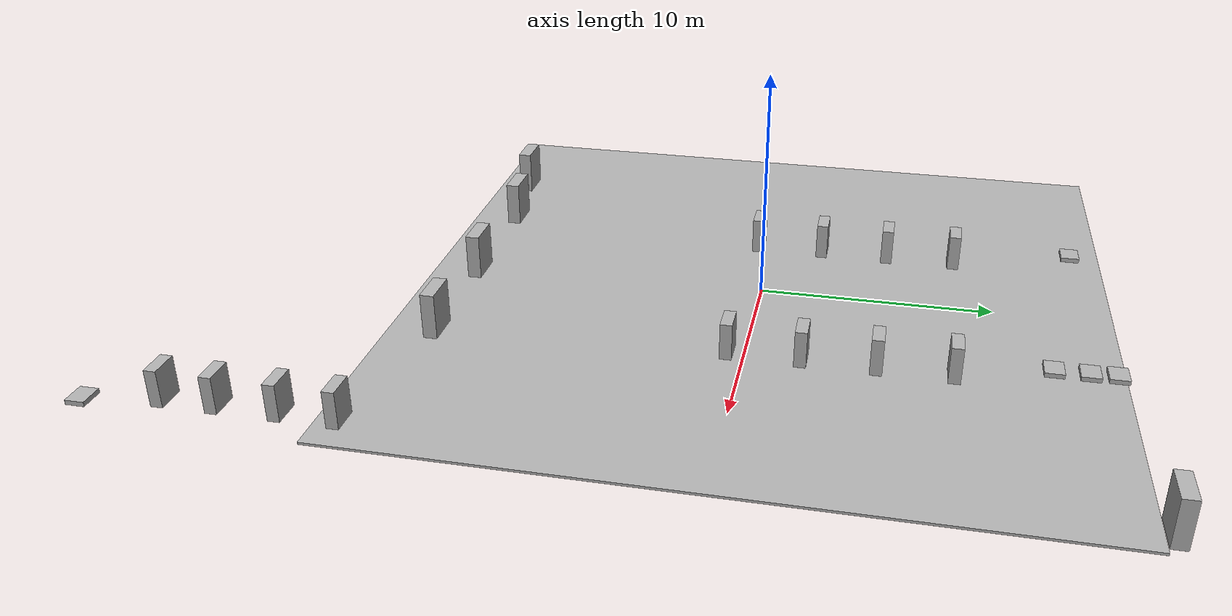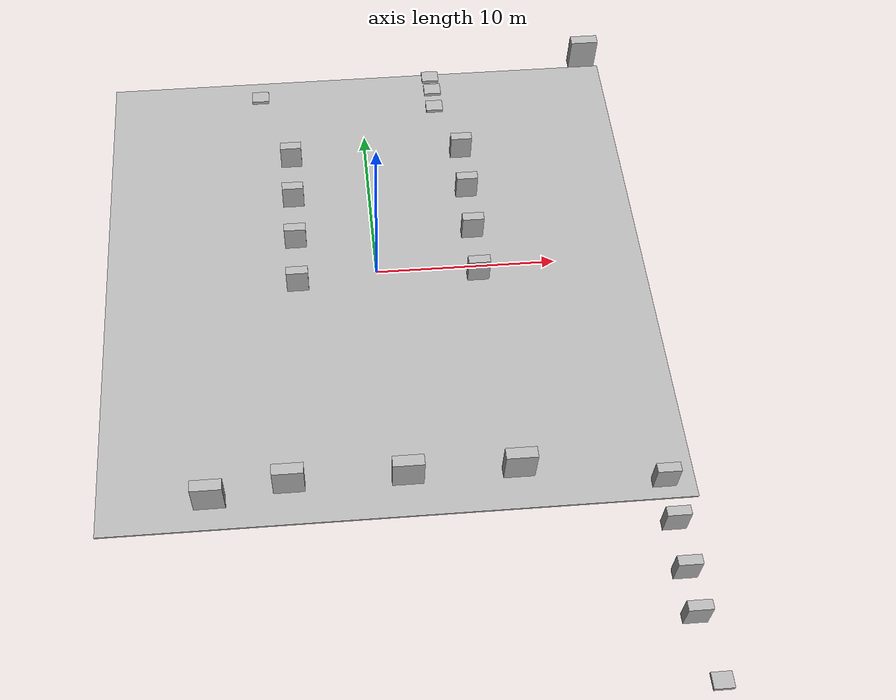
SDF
<sdf version='1.9'>
  <world name='empty'>
    <gravity>0 0 -9.8</gravity>
    <physics name='1ms' type='ignored'>
      <max_step_size>0.001</max_step_size>
      <real_time_factor>1</real_time_factor>
      <real_time_update_rate>1000</real_time_update_rate>
    </physics>
    <plugin name='gz::sim::systems::Physics' filename='gz-sim-physics-system'/>
    <plugin name='gz::sim::systems::UserCommands' filename='gz-sim-user-commands-system'/>
    <plugin name='gz::sim::systems::SceneBroadcaster' filename='gz-sim-scene-broadcaster-system'/>
    <plugin name='gz::sim::systems::Contact' filename='gz-sim-contact-system'/>

       <plugin
        filename="gz-sim-triggered-publisher-system"
        name="gz::sim::systems::TriggeredPublisher">
        <input type="gz.msgs.Int32" topic="/keyboard/keypress">
            <match field="data">16777235</match>
        </input>
        <output type="gz.msgs.Twist" topic="/cmd_vel">
            <linear>
                <x>0.5</x>
                <y>0.0</y>
                <z>0.0</z>
            </linear>
            <angular>
                <x>0.0</x>
                <y>0.0</y>
                <z>0.0</z>
            </angular>
        </output>
    </plugin>

    <plugin
        filename="gz-sim-triggered-publisher-system"
        name="gz::sim::systems::TriggeredPublisher">
        <input type="gz.msgs.Int32" topic="/keyboard/keypress">
            <match field="data">16777237</match>
        </input>
        <output type="gz.msgs.Twist" topic="/cmd_vel">
            <linear>
                <x>-0.5</x>
                <y>0.0</y>
                <z>0.0</z>
            </linear>
            <angular>
                <x>0.0</x>
                <y>0.0</y>
                <z>0.0</z>
            </angular>
        </output>
    </plugin>

    <plugin
        filename="gz-sim-triggered-publisher-system"
        name="gz::sim::systems::TriggeredPublisher">
        <input type="gz.msgs.Int32" topic="/keyboard/keypress">
            <match field="data">16777236</match>
        </input>
        <output type="gz.msgs.Twist" topic="/cmd_vel">
            <linear>
                <x>0.0</x>
                <y>0.0</y>
                <z>0.0</z>
            </linear>
            <angular>
                <x>0.0</x>
                <y>0.0</y>
                <z>-0.5</z>
            </angular>
        </output>
    </plugin>

    <plugin
        filename="gz-sim-triggered-publisher-system"
        name="gz::sim::systems::TriggeredPublisher">
        <input type="gz.msgs.Int32" topic="/keyboard/keypress">
            <match field="data">16777235</match>
        </input>
        <output type="gz.msgs.Twist" topic="/cmd_vel">
            <linear>
                <x>0.0</x>
                <y>0.0</y>
                <z>0.0</z>
            </linear>
            <angular>
                <x>0.0</x>
                <y>0.0</y>
                <z>0.5</z>
            </angular>
        </output>
    </plugin>

    <plugin
      filename="gz-sim-triggered-publisher-system"
      name="gz::sim::systems::TriggeredPublisher">
    <publisher>
      <topic>/cmd_vel</topic>
      <type>gz.msgs.Twist</type>
      <ignition>
        <linear>
          <x>1.0</x>
        </linear>
      </ignition>
      <trigger>
        <topic>/keyboard/keypress</topic>
        <type>gz.msgs.Int32</type>
        <data>87</data> <!-- ASCII code for 'W' key -->
      </trigger>
    </publisher>
    <!-- Add additional publisher-trigger pairs as needed -->
  </plugin>

    <scene>
      <ambient>1 1 1 1</ambient>
      <background>0.3 0.7 0.9 1</background>
      <shadows>false</shadows>
      <grid>true</grid>
    </scene>
    <magnetic_field>6e-06 2.3e-05 -4.2e-05</magnetic_field>
    <atmosphere type='adiabatic'/>
    <model name='ground_plane'>
      <static>true</static>
      <link name='link'>
        <collision name='collision'>
          <geometry>
            <plane>
              <normal>0 0 1</normal>
              <size>1 1</size>
            </plane>
          </geometry>
          <surface>
            <friction>
              <ode/>
            </friction>
            <bounce/>
            <contact/>
          </surface>
        </collision>
        <pose>0 0 0 0 -0 0</pose>
        <inertial>
          <pose>0 0 0 0 -0 0</pose>
          <mass>1</mass>
          <inertia>
            <ixx>1</ixx>
            <ixy>0</ixy>
            <ixz>0</ixz>
            <iyy>1</iyy>
            <iyz>0</iyz>
            <izz>1</izz>
          </inertia>
        </inertial>
        <enable_wind>false</enable_wind>
      </link>
      <pose>0 0 0 0 -0 0</pose>
      <self_collide>false</self_collide>
    </model>
    <include>
      <uri>https://fuel.ignitionrobotics.org/1.0/MovAi/models/Warehouse</uri>
      <name>warehouse</name>
      <pose>0 0 -0.098 0 -0 0</pose>
    </include>
    <include>
      <uri>https://fuel.ignitionrobotics.org/1.0/MovAi/models/shelf_big</uri>
      <name>shelf_big_0</name>
      <pose>-9.34177 -13.5598 0 0 -0 0</pose>
    </include>
    <include>
      <uri>https://fuel.ignitionrobotics.org/1.0/MovAi/models/shelf</uri>
      <name>shelf</name>
      <pose>-4.41528 -0.690987 0 0 -0 0</pose>
    </include>
    <include>
      <uri>https://fuel.ignitionrobotics.org/1.0/MovAi/models/shelf</uri>
      <name>shelf_0</name>
      <pose>-4.41528 2.30697 0 0 -0 0</pose>
    </include>
    <include>
      <uri>https://fuel.ignitionrobotics.org/1.0/MovAi/models/shelf</uri>
      <name>shelf_1</name>
      <pose>-4.41528 5.30708 0 0 -0 0</pose>
    </include>
    <include>
      <uri>https://fuel.ignitionrobotics.org/1.0/MovAi/models/shelf</uri>
      <name>shelf_2</name>
      <pose>-4.41528 8.34352 0 0 -0 0</pose>
    </include>
    <include>
      <uri>https://fuel.ignitionrobotics.org/1.0/MovAi/models/shelf</uri>
      <name>shelf_3</name>
      <pose>5.60144 8.34352 0 0 -0 0</pose>
    </include>
    <include>
      <uri>https://fuel.ignitionrobotics.org/1.0/MovAi/models/shelf</uri>
      <name>shelf_4</name>
      <pose>5.60144 5.30708 0 0 -0 0</pose>
    </include>
    <include>
      <uri>https://fuel.ignitionrobotics.org/1.0/MovAi/models/shelf</uri>
      <name>shelf_5</name>
      <pose>5.60144 -0.690987 0 0 -0 0</pose>
    </include>
    <include>
      <uri>https://fuel.ignitionrobotics.org/1.0/MovAi/models/shelf</uri>
      <name>shelf_6</name>
      <pose>5.60144 2.30697 0 0 -0 0</pose>
    </include>
    <include>
      <uri>https://fuel.ignitionrobotics.org/1.0/MovAi/models/pallet_box_mobile</uri>
      <name>pallet_box_mobile</name>
      <pose>4.4161 14.6952 -0.005001 -0 0 -0</pose>
    </include>
    <include>
      <uri>https://fuel.ignitionrobotics.org/1.0/MovAi/models/pallet_box_mobile</uri>
      <name>pallet_box_mobile_0</name>
      <pose>4.45415 13.6212 -0.005001 -0 0 -0</pose>
    </include>
    <include>
      <uri>https://fuel.ignitionrobotics.org/1.0/MovAi/models/pallet_box_mobile</uri>
      <name>pallet_box_mobile_1</name>
      <pose>4.4468 12.229 -0.005001 -0 0 0</pose>
    </include>
    <include>
      <uri>https://fuel.ignitionrobotics.org/1.0/MovAi/models/pallet_box_mobile</uri>
      <name>pallet_box</name>
      <pose>-6.11913 13.7079 0.01 0 -0 0</pose>
    </include>
    <include>
      <uri>https://fuel.ignitionrobotics.org/1.0/MovAi/models/shelf_big</uri>
      <name>shelf_big_1</name>
      <pose>13.9821 15.319 0 0 -0 0</pose>
    </include>
    <include>
      <uri>https://fuel.ignitionrobotics.org/1.0/MovAi/models/shelf_big</uri>
      <name>shelf_big_2</name>
      <pose>6.19777 -12.9647 0 0 -0 0</pose>
    </include>
    <include>
      <uri>https://fuel.ignitionrobotics.org/1.0/MovAi/models/shelf_big</uri>
      <name>shelf_big_3</name>
      <pose>0.594376 -12.9647 0 0 -0 0</pose>
    </include>
    <include>
      <uri>https://fuel.ignitionrobotics.org/1.0/MovAi/models/shelf_big</uri>
      <name>shelf_big_4</name>
      <pose>-5.36284 -12.9647 0 0 -0 0</pose>
    </include>
    <include>
      <uri>https://fuel.ignitionrobotics.org/1.0/MovAi/models/shelf</uri>
      <name>shelf_7</name>
      <pose>13.3818 -21.2416 0 0 -0 0</pose>
    </include>
    <include>
      <uri>https://fuel.ignitionrobotics.org/1.0/MovAi/models/shelf</uri>
      <name>shelf_8</name>
      <pose>13.3818 -19.0028 0 0 -0 0</pose>
    </include>
    <include>
      <uri>https://fuel.ignitionrobotics.org/1.0/MovAi/models/shelf</uri>
      <name>shelf_9</name>
      <pose>13.3818 -16.4478 0 0 -0 0</pose>
    </include>
    <include>
      <uri>https://fuel.ignitionrobotics.org/1.0/MovAi/models/shelf</uri>
      <name>shelf_10</name>
      <pose>13.3818 -14.1028 0 0 -0 0</pose>
    </include>
    <include>
      <uri>https://fuel.ignitionrobotics.org/1.0/MovAi/models/pallet_box_mobile</uri>
      <name>pallet_box_0</name>
      <pose>14.0222 -24.335 0.01 0 -0 0</pose>
    </include>
  </world>
</sdf>

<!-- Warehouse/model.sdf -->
<sdf version="1.7">
  <model name="Warehouse">
    <static>true</static>
    <link name="link">
      <pose>0 0 0.05 0 0 0</pose>
      <visual name="visual">
        <geometry>
          <box>
            <size>30.0 30.0 0.1</size>
          </box>
        </geometry>
        <material>
          <ambient>0.7 0.7 0.7 1</ambient>
          <diffuse>0.7 0.7 0.7 1</diffuse>
        </material>
      </visual>    </link>
  </model>
</sdf>

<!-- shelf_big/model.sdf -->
<sdf version="1.7">
  <model name="shelf_big">
    <static>true</static>
    <link name="link">
      <pose>0 0 1.0 0 0 0</pose>
      <visual name="visual">
        <geometry>
          <box>
            <size>1.6 0.6 2.0</size>
          </box>
        </geometry>
        <material>
          <ambient>0.7 0.7 0.7 1</ambient>
          <diffuse>0.7 0.7 0.7 1</diffuse>
        </material>
      </visual>
      <collision name="collision">
        <geometry>
          <box>
            <size>1.6 0.6 2.0</size>
          </box>
        </geometry>
      </collision>
    </link>
  </model>
</sdf>

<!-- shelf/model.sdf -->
<sdf version="1.7">
  <model name="shelf">
    <static>true</static>
    <link name="link">
      <pose>0 0 0.8 0 0 0</pose>
      <visual name="visual">
        <geometry>
          <box>
            <size>1.2 0.5 1.6</size>
          </box>
        </geometry>
        <material>
          <ambient>0.7 0.7 0.7 1</ambient>
          <diffuse>0.7 0.7 0.7 1</diffuse>
        </material>
      </visual>
      <collision name="collision">
        <geometry>
          <box>
            <size>1.2 0.5 1.6</size>
          </box>
        </geometry>
      </collision>
    </link>
  </model>
</sdf>

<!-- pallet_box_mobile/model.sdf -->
<sdf version="1.7">
  <model name="pallet_box_mobile">
    <static>true</static>
    <link name="link">
      <pose>0 0 0.1 0 0 0</pose>
      <visual name="visual">
        <geometry>
          <box>
            <size>1.0 0.8 0.2</size>
          </box>
        </geometry>
        <material>
          <ambient>0.7 0.7 0.7 1</ambient>
          <diffuse>0.7 0.7 0.7 1</diffuse>
        </material>
      </visual>
      <collision name="collision">
        <geometry>
          <box>
            <size>1.0 0.8 0.2</size>
          </box>
        </geometry>
      </collision>
    </link>
  </model>
</sdf>
